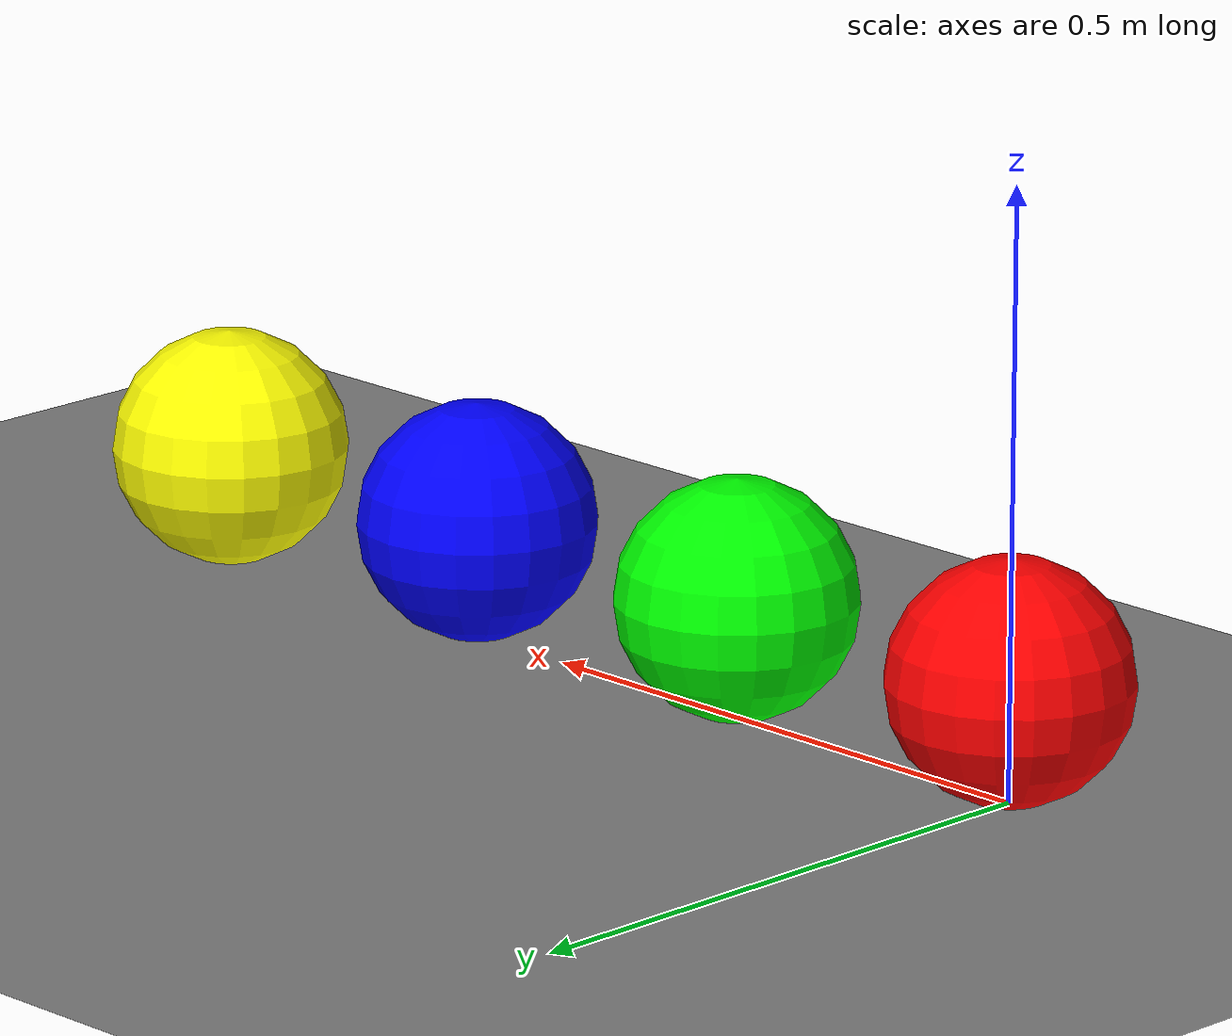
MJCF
<mujoco>
    <compiler angle="radian" autolimits="true" />
    <option timestep="1e-3" />
    <asset>
        <texture type="skybox" file="../../MJCF/asset/desert.png"
            gridsize="3 4" gridlayout=".U..LFRB.D.." />
        <texture name="plane" type="2d" builtin="checker" rgb1=".1 .1 .1" rgb2=".9 .9 .9"
            width="512" height="512" mark="cross" markrgb=".8 .8 .8" />
        <material name="plane" reflectance="0.3" texture="plane" texrepeat="1 1" texuniform="true" />
    </asset>

    <worldbody>
        <geom name="floor" pos="0 0 0" size="0 0 .25" type="plane" material="plane"
            solimp="0.5 1 0.1 0.5 2" solref="0.02 1" solmix="0" condim="1" />
        <light directional="true" ambient=".3 .3 .3" pos="30 30 30" dir="0 -.5 -1"
            diffuse=".5 .5 .5" specular=".5 .5 .5" />

        <!-- 不同的width  solimp的第三个参数-->
        <body pos="0 0 0.1">
            <freejoint />
            <geom size="0.1" solimp="0.1 0.9 0.001 0.5 2" solref="0.01 1" mass=".01" solmix="1"
                condim="3" rgba="1 0 0 1" />
        </body>

        <body pos="0.3 0 0.1">
            <freejoint />
            <geom size="0.1" solimp="0.1 0.9 0.01 0.5 2" solref="0.01 1" mass=".01" solmix="1"
                condim="3" rgba="0 1 0 1" />
        </body>

        <body pos="0.6 0 0.1">
            <freejoint />
            <geom size="0.1" solimp="0.1 0.9 0.1 0.5 2" solref="0.01 1" mass=".01" solmix="1"
                condim="3" rgba="0 0 1 1" />
        </body>

        <body pos="0.9 0 0.1">
            <freejoint />
            <geom size="0.1" solimp="0.1 0.9 0.3 0.5 2" solref="0.01 1" mass=".01" solmix="1"
                condim="3" rgba="1 1 0 1" />
        </body>
    </worldbody>

</mujoco>
